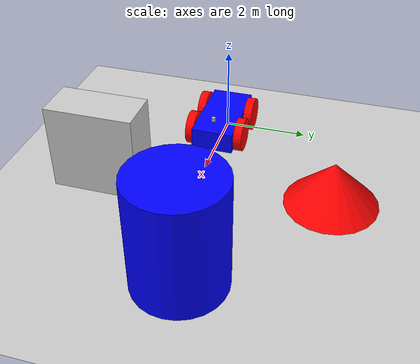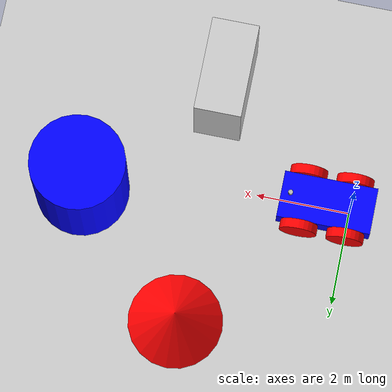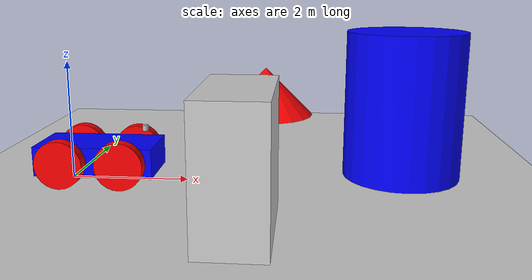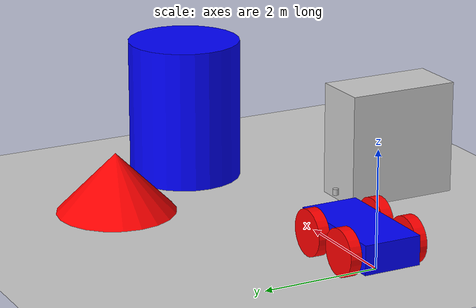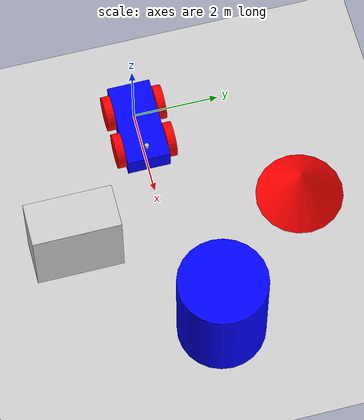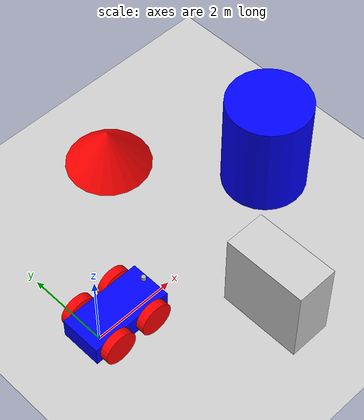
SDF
<?xml version="1.0" ?>
<sdf version="1.10">
    <world name="car_world">
        <physics name="1ms" type="ignored">
            <max_step_size>0.001</max_step_size>
            <real_time_factor>1.0</real_time_factor>
        </physics>
        <plugin
            filename="gz-sim-physics-system"
            name="gz::sim::systems::Physics">
        </plugin>
        <plugin
            filename="gz-sim-user-commands-system"
            name="gz::sim::systems::UserCommands">
        </plugin>
        <plugin
            filename="gz-sim-scene-broadcaster-system"
            name="gz::sim::systems::SceneBroadcaster">
        </plugin>
        <plugin filename="gz-sim-sensors-system"
                name="gz::sim::systems::Sensors">

            <render_engine>ogre2</render_engine>
        </plugin>

        <light type="directional" name="sun">
            <cast_shadows>true</cast_shadows>
            <pose>0 0 10 0 0 0</pose>
            <diffuse>0.8 0.8 0.8 1</diffuse>
            <specular>0.2 0.2 0.2 1</specular>
            <attenuation>
                <range>1000</range>
                <constant>0.9</constant>
                <linear>0.01</linear>
                <quadratic>0.001</quadratic>
            </attenuation>
            <direction>-0.5 0.1 -0.9</direction>
        </light>

        <model name="vehicle_blue" canonical_link='chassis'>
            <pose relative_to='world'>0 0 0 0 0 0</pose>

            <link name='chassis'>
                <pose relative_to='__model__'>0.5 0 0.4 0 0 0</pose>

                <inertial> <mass>1.14395</mass>
                    <inertia>
                        <ixx>0.095329</ixx>
                        <ixy>0</ixy>
                        <ixz>0</ixz>
                        <iyy>0.381317</iyy>
                        <iyz>0</iyz>
                        <izz>0.476646</izz>
                    </inertia>
                </inertial>

                <visual name='visual'>
                    <geometry>
                        <box>
                            <size>2.0 1.0 0.5</size>
                        </box>
                    </geometry>
                    <material>
                        <ambient>0.0 0.0 1.0 1</ambient>
                        <diffuse>0.0 0.0 1.0 1</diffuse>
                        <specular>0.0 0.0 1.0 1</specular>
                    </material>
                </visual>

                <collision name='collision'>
                    <geometry>
                        <box>
                            <size>2.0 1.0 0.5</size>
                        </box>
                    </geometry>
                </collision>
            </link>

            <link name='left_rear_wheel'>
                <pose relative_to="chassis">-0.5 0.6 0 -1.5707 0 0</pose>
                <inertial>
                    <mass>1</mass>
                    <inertia>
                        <ixx>0.043333</ixx>
                        <ixy>0</ixy>
                        <ixz>0</ixz>
                        <iyy>0.043333</iyy>
                        <iyz>0</iyz>
                        <izz>0.08</izz>
                    </inertia>
                </inertial>

                <visual name='visual'>
                    <geometry>
                        <cylinder>
                            <radius>0.4</radius>
                            <length>0.2</length>
                        </cylinder>
                    </geometry>

                    <material>
                        <ambient>1.0 0.0 0.0 1</ambient>
                        <diffuse>1.0 0.0 0.0 1</diffuse>
                        <specular>1.0 0.0 0.0 1</specular>
                    </material>
                </visual>

                <collision name='collision'>
                    <geometry>
                        <cylinder>
                            <radius>0.4</radius>
                            <length>0.2</length>
                        </cylinder>
                    </geometry>
                </collision>

            </link>

            <link name='left_front_wheel'>
                <pose relative_to="chassis">0.5 0.6 0 -1.5707 0 0</pose>
                <inertial>
                    <mass>1</mass>
                    <inertia>
                        <ixx>0.043333</ixx>
                        <ixy>0</ixy>
                        <ixz>0</ixz>
                        <iyy>0.043333</iyy>
                        <iyz>0</iyz>
                        <izz>0.08</izz>
                    </inertia>
                </inertial>

                <visual name='visual'>
                    <geometry>
                        <cylinder>
                            <radius>0.4</radius>
                            <length>0.2</length>
                        </cylinder>
                    </geometry>

                    <material>
                        <ambient>1.0 0.0 0.0 1</ambient>
                        <diffuse>1.0 0.0 0.0 1</diffuse>
                        <specular>1.0 0.0 0.0 1</specular>
                    </material>
                </visual>

                <collision name='collision'>
                    <geometry>
                        <cylinder>
                            <radius>0.4</radius>
                            <length>0.2</length>
                        </cylinder>
                    </geometry>
                </collision>

            </link>

            <link name='right_rear_wheel'>
                <pose relative_to="chassis">-0.5 -0.6 0 -1.5707 0 0</pose> <inertial>
                    <mass>1</mass>
                    <inertia>
                        <ixx>0.043333</ixx>
                        <ixy>0</ixy>
                        <ixz>0</ixz>
                        <iyy>0.043333</iyy>
                        <iyz>0</iyz>
                        <izz>0.08</izz>
                    </inertia>
                </inertial>

                <visual name='visual'>
                    <geometry>
                        <cylinder>
                            <radius>0.4</radius>
                            <length>0.2</length>
                        </cylinder>
                    </geometry>

                    <material>
                        <ambient>1.0 0.0 0.0 1</ambient>
                        <diffuse>1.0 0.0 0.0 1</diffuse>
                        <specular>1.0 0.0 0.0 1</specular>
                    </material>
                </visual>

                <collision name='collision'>
                    <geometry>
                        <cylinder>
                            <radius>0.4</radius>
                            <length>0.2</length>
                        </cylinder>
                    </geometry>
                </collision>
            </link>

            <link name='right_front_wheel'>
                <pose relative_to="chassis">0.5 -0.6 0 -1.5707 0 0</pose> <inertial>
                    <mass>1</mass>
                    <inertia>
                        <ixx>0.043333</ixx>
                        <ixy>0</ixy>
                        <ixz>0</ixz>
                        <iyy>0.043333</iyy>
                        <iyz>0</iyz>
                        <izz>0.08</izz>
                    </inertia>
                </inertial>

                <visual name='visual'>
                    <geometry>
                        <cylinder>
                            <radius>0.4</radius>
                            <length>0.2</length>
                        </cylinder>
                    </geometry>

                    <material>
                        <ambient>1.0 0.0 0.0 1</ambient>
                        <diffuse>1.0 0.0 0.0 1</diffuse>
                        <specular>1.0 0.0 0.0 1</specular>
                    </material>
                </visual>

                <collision name='collision'>
                    <geometry>
                        <cylinder>
                            <radius>0.4</radius>
                            <length>0.2</length>
                        </cylinder>
                    </geometry>
                </collision>
            </link>

            <link name='lidar_link'>
                <pose relative_to='chassis'>0.8 0 0.5 0 0 0</pose>
                <inertial>
                    <mass>0.1</mass>
                    <inertia>
                        <ixx>0.000166667</ixx>
                        <iyy>0.000166667</iyy>
                        <izz>0.000166667</izz>
                    </inertia>
                </inertial>
                <visual name='visual'>
                    <geometry>
                        <cylinder>
                            <radius>0.05</radius>
                            <length>0.1</length>
                        </cylinder>
                    </geometry>
                </visual>
                <sensor name='gpu_lidar' type='gpu_lidar'>
                    <topic>lidar</topic>
                    <update_rate>10</update_rate>
                    <lidar>
                        <scan>
                            <horizontal>
                                <samples>640</samples>
                                <resolution>1</resolution>
                                <min_angle>-1.396263</min_angle>
                                <max_angle>1.396263</max_angle>
                            </horizontal>
                        </scan>
                        <range>
                            <min>0.08</min>
                            <max>10.0</max>
                        </range>
                    </lidar>
                    <visualize>true</visualize>
                </sensor>
            </link>

            <joint name='lidar_joint' type='fixed'>
                <parent>chassis</parent>
                <child>lidar_link</child>
            </joint>

            <frame name="caster_frame" attached_to='chassis'>
                <pose>0.8 0 -0.2 0 0 0</pose>
            </frame>

            <joint name='left_rear_wheel_joint' type='revolute'>
                <pose relative_to='left_rear_wheel'/>

                <parent>chassis</parent>
                <child>left_rear_wheel</child>

                <axis>
                    <xyz expressed_in='__model__'>0 1 0</xyz> <limit>
                        <lower>-1.79769e+308</lower>    <upper>1.79769e+308</upper>     </limit>
                </axis>
            </joint>

             <joint name='left_front_wheel_joint' type='revolute'>
                <pose relative_to='left_front_wheel'/>

                <parent>chassis</parent>
                <child>left_front_wheel</child>

                <axis>
                    <xyz expressed_in='__model__'>0 1 0</xyz> <limit>
                        <lower>-1.79769e+308</lower>    <upper>1.79769e+308</upper>     </limit>
                </axis>
            </joint>

            <joint name='right_rear_wheel_joint' type='revolute'>
                <pose relative_to='right_rear_wheel'/>

                <parent>chassis</parent>
                <child>right_rear_wheel</child>

                <axis>
                    <xyz expressed_in='__model__'>0 1 0</xyz>
                    <limit>
                        <lower>-1.79769e+308</lower>    <upper>1.79769e+308</upper>     </limit>
                </axis>
            </joint>

            <joint name='right_front_wheel_joint' type='revolute'>
                <pose relative_to='right_front_wheel'/>

                <parent>chassis</parent>
                <child>right_front_wheel</child>

                <axis>
                    <xyz expressed_in='__model__'>0 1 0</xyz>
                    <limit>
                        <lower>-1.79769e+308</lower>    <upper>1.79769e+308</upper>     </limit>
                </axis>
            </joint>

            <plugin filename="gz-sim-diff-drive-system"
                    name="gz::sim::systems::DiffDrive">

                    <!-- For 4-wheel drive, list both front and rear joints -->
                <left_joint>left_front_wheel_joint</left_joint>
                <left_joint>left_rear_wheel_joint</left_joint>
                <right_joint>right_front_wheel_joint</right_joint>
                <right_joint>right_rear_wheel_joint</right_joint>

                <wheel_separation>1.2</wheel_separation>
                <wheel_radius>0.4</wheel_radius>
                <odom_publish_frequency>1</odom_publish_frequency>

                <topic>cmd_vel</topic>
            </plugin>

        </model>

        <model name="cylinder">
            <pose relative_to='world'>5.67 0.61 1 0 0 0</pose>
            <link name="link">
                <inertial>
                    <mass>1.0</mass>
                    <inertia>
                        <ixx>0.1458</ixx> <ixy>0</ixy> <ixz>0</ixz>
                        <iyy>0.1458</iyy> <iyz>0</iyz>
                        <izz>0.125</izz>
                    </inertia>
                </inertial>
                <collision name="collision">
                <geometry>
                    <cylinder>
                    <radius>1</radius>
                    <length>3</length>
                    </cylinder>
                </geometry>
                </collision>
                <visual name="visual">
                <geometry>
                    <cylinder>
                    <radius>1</radius>
                    <length>3</length>
                    </cylinder>
                </geometry>
                <material>
                    <ambient>0.0 0.0 1.0 1</ambient>
                    <diffuse>0.0 0.0 1.0 1</diffuse>
                    <specular>0.0 0.0 1.0 1</specular>
                </material>
                </visual>
            </link>
        </model>

        <model name="box">
            <pose relative_to='world'>3.1 -2.11 1 0 0 0</pose>
            <link name="link">
                <inertial>
                    <mass>1.0</mass>
                    <inertia>
                        <ixx>0.1667</ixx> <ixy>0</ixy> <ixz>0</ixz>
                        <iyy>0.1667</iyy> <iyz>0</iyz>
                        <izz>0.1667</izz>
                    </inertia>
                </inertial>
                <collision name="collision">
                <geometry>
                    <box>
                    <size>1.0 2.0 2.0</size>
                    </box>
                </geometry>
                </collision>
                <visual name="visual">
                <geometry>
                    <box>
                    <size>1.0 2.0 2.0</size>
                    </box>
                </geometry>
                <material>
                    <ambient>0.8 0.8 0.8 1</ambient>
                    <diffuse>0.8 0.8 0.8 1</diffuse>
                    <specular>0.8 0.8 0.8 1</specular>
                </material>
                </visual>
            </link>
        </model>

        <model name="cone">
            <pose relative_to='world'>3.14 3.1 1 0 0 0</pose>
            <link name="link">
                <inertial>
                    <mass>1.0</mass>
                    <inertia>
                        <ixx>0.1</ixx> <ixy>0</ixy> <ixz>0</ixz>
                        <iyy>0.1</iyy> <iyz>0</iyz>
                        <izz>0.1</izz>
                    </inertia>
                </inertial>
                <collision name="collision">
                <geometry>
                    <cone>
                    <radius>1</radius>
                    <height>3.0</height>
                    </cone>
                </geometry>
                </collision>
                <visual name="visual">
                <geometry>
                    <cone>
                    <radius>1</radius>
                    <height>3.0</height>
                    </cone>
                </geometry>
                <material>
                    <ambient>1.0 0.0 0.0 1</ambient>
                    <diffuse>1.0 0.0 0.0 1</diffuse>
                    <specular>1.0 0.0 0.0 1</specular>
                </material>
                </visual>
            </link>
        </model>

        <model name="ground_plane">
            <static>true</static>
            <link name="link">
                <collision name="collision">
                <geometry>
                    <plane>
                    <normal>0 0 1</normal>
                    </plane>
                </geometry>
                </collision>
                <visual name="visual">
                <geometry>
                    <plane>
                    <normal>0 0 1</normal>
                    <size>100 100</size>
                    </plane>
                </geometry>
                <material>
                    <ambient>0.8 0.8 0.8 1</ambient>
                    <diffuse>0.8 0.8 0.8 1</diffuse>
                    <specular>0.8 0.8 0.8 1</specular>
                </material>
                </visual>
            </link>
        </model>

        <plugin filename="gz-sim-triggered-publisher-system"
                name="gz::sim::systems::TriggeredPublisher">
            <input type="gz.msgs.Int32" topic="/keyboard/keypress">
                <match field="data">16777235</match>
            </input>
            <output type="gz.msgs.Twist" topic="/cmd_vel">
                linear: {x: 1}, angular: {z: 0.0}
            </output>
        </plugin>

                <!-- Moving Backward-->
        <plugin filename="gz-sim-triggered-publisher-system"
                name="gz::sim::systems::TriggeredPublisher">
            <input type="gz.msgs.Int32" topic="/keyboard/keypress">
                <match field="data">16777237</match>
            </input>
            <output type="gz.msgs.Twist" topic="/cmd_vel">
                linear: {x: -1}, angular: {z: 0.0}
            </output>
        </plugin>

                <!-- Turning Left-->
        <plugin filename="gz-sim-triggered-publisher-system"
                name="gz::sim::systems::TriggeredPublisher">
            <input type="gz.msgs.Int32" topic="/keyboard/keypress">
                <match field="data">16777234</match>
            </input>
            <output type="gz.msgs.Twist" topic="/cmd_vel">
                linear: {x: 0.0}, angular: {z: 1}
            </output>
        </plugin>

                <!-- Turning Right-->
        <plugin filename="gz-sim-triggered-publisher-system"
                name="gz::sim::systems::TriggeredPublisher">
            <input type="gz.msgs.Int32" topic="/keyboard/keypress">
                <match field="data">16777236</match>
            </input>
            <output type="gz.msgs.Twist" topic="/cmd_vel">
                linear: {x: 0.0}, angular: {z: -1}
            </output>
        </plugin>

    </world>

</sdf>
